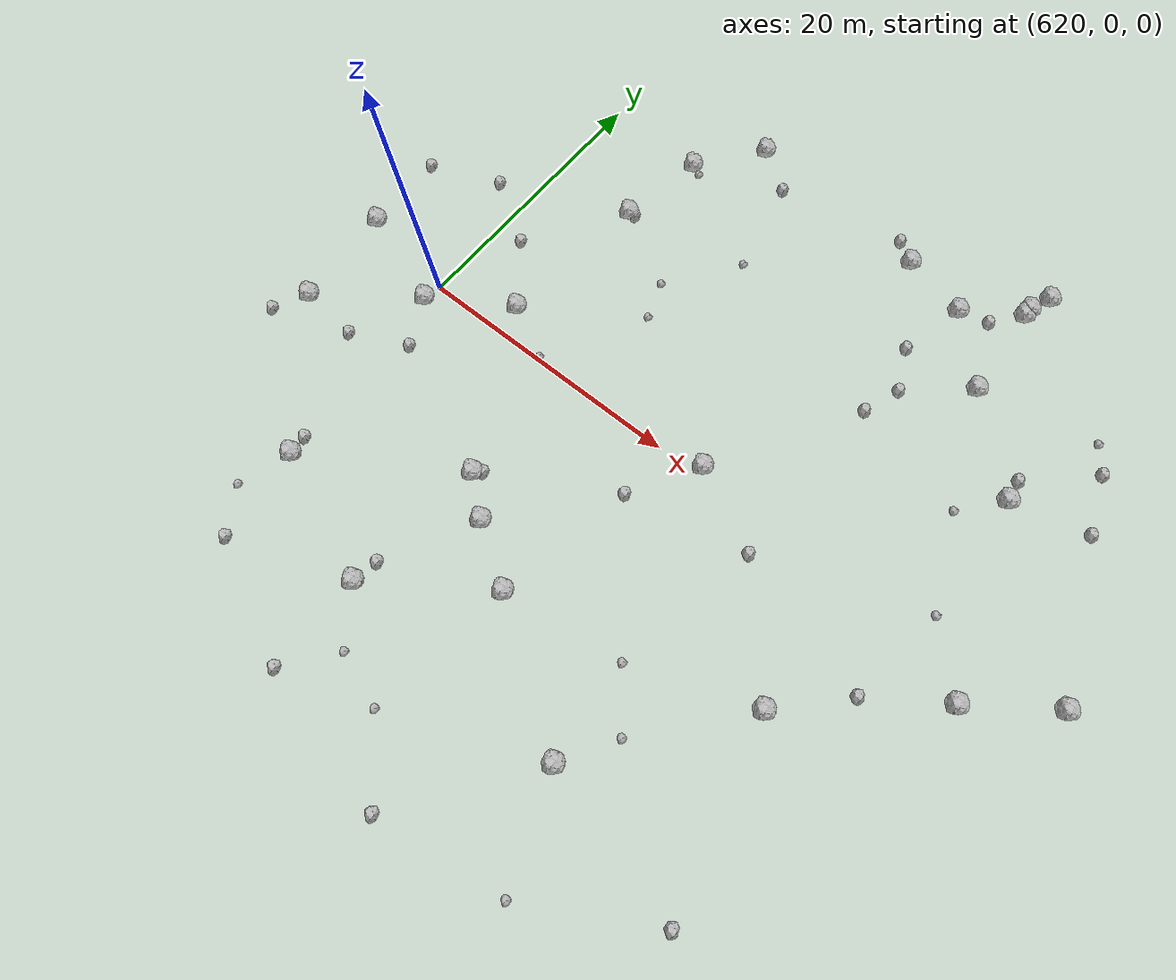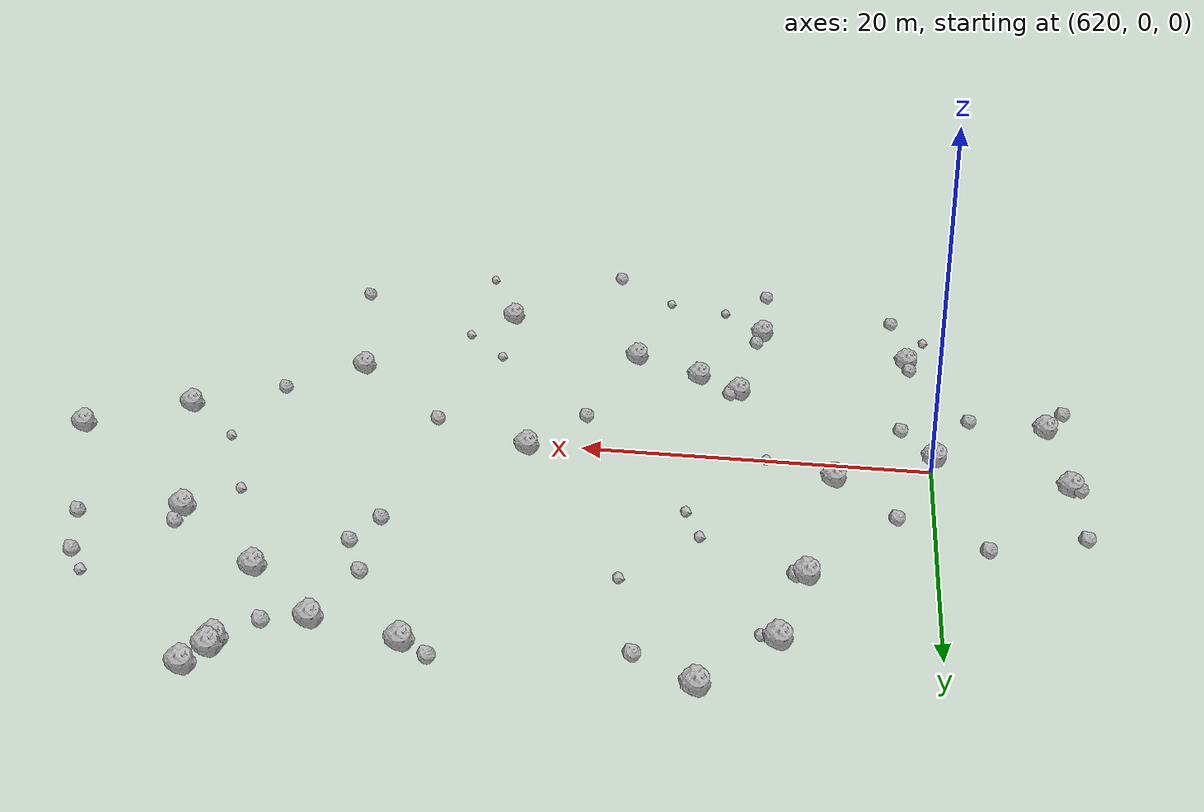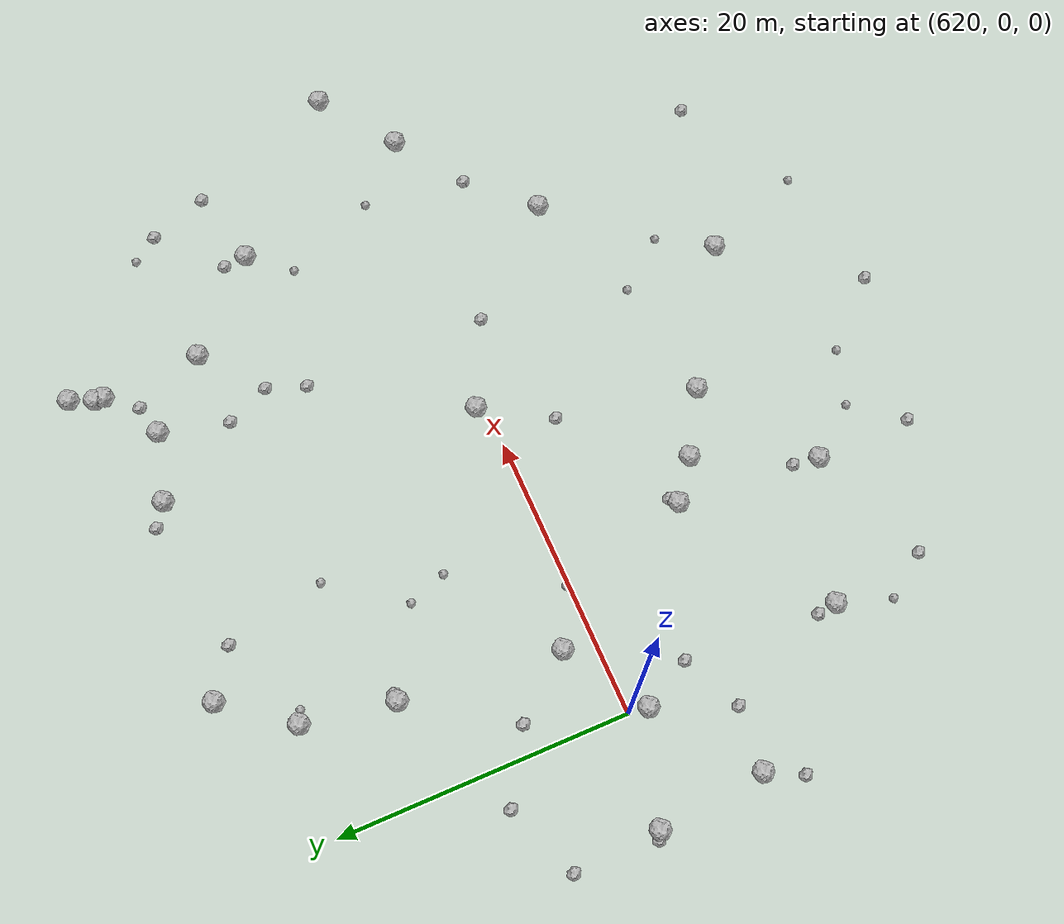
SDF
<sdf version="1.6">
 <world name="default">
  <include><uri>model://sun</uri></include>
  <model name="rock1_16_3">
   <include><uri>model://rock1</uri><pose>650.0054901970822 21.173473814084097 0.5 0 0 0</pose></include>
  </model>
  <model name="rock1_16_4">
   <include><uri>model://rock1</uri><pose>655.5994856930222 -9.443229917844715 0.5 0 0 0</pose></include>
  </model>
  <model name="rock1_16_5">
   <include><uri>model://rock1</uri><pose>613.2652553059283 -6.170101474073043 0.5 0 0 0</pose></include>
  </model>
  <model name="rock1_16_6">
   <include><uri>model://rock1</uri><pose>631.5497511034947 -9.001423838528403 0.5 0 0 0</pose></include>
  </model>
  <model name="rock1_16_7">
   <include><uri>model://rock1</uri><pose>612.5711248038716 1.3261971074953003 0.5 0 0 0</pose></include>
  </model>
  <model name="rock1_16_8">
   <include><uri>model://rock1</uri><pose>647.7519928480081 -19.5813813906354 0.5 0 0 0</pose></include>
  </model>
  <model name="rock1_16_9">
   <include><uri>model://rock1</uri><pose>634.203739810542 -11.090257543435456 0.5 0 0 0</pose></include>
  </model>
  <model name="rock1_16_10">
   <include><uri>model://rock1</uri><pose>654.6008522426661 25.980544412242978 0.5 0 0 0</pose></include>
  </model>
  <model name="rock1_16_11">
   <include><uri>model://rock1</uri><pose>621.2249890915539 -15.443096397111152 0.5 0 0 0</pose></include>
  </model>
  <model name="rock1_16_12">
   <include><uri>model://rock1</uri><pose>660.1149221154934 11.088322557468338 0.5 0 0 0</pose></include>
  </model>
  <model name="rock1_16_13">
   <include><uri>model://rock1</uri><pose>653.8630627314266 23.730613569392908 0.5 0 0 0</pose></include>
  </model>
  <model name="rock1_16_14">
   <include><uri>model://rock1</uri><pose>645.1937341086824 22.489299608249993 0.5 0 0 0</pose></include>
  </model>
  <model name="rock1_16_15">
   <include><uri>model://rock1</uri><pose>625.4569379733513 2.1833079822635284 0.5 0 0 0</pose></include>
  </model>
  <model name="rock1_16_16">
   <include><uri>model://rock1</uri><pose>627.6714330941935 19.589437897295582 0.5 0 0 0</pose></include>
  </model>
  <model name="rock1_16_17">
   <include><uri>model://rock1</uri><pose>638.4671225074951 -13.702426610053767 0.5 0 0 0</pose></include>
  </model>
  <model name="rock1_16_18">
   <include><uri>model://rock1</uri><pose>630.6689564424856 -19.050096290303387 0.5 0 0 0</pose></include>
  </model>
  <model name="rock1_16_19">
   <include><uri>model://rock1</uri><pose>664.438490730054 -2.03868531078702 0.5 0 0 0</pose></include>
  </model>
  <model name="rock1_16_20">
   <include><uri>model://rock1</uri><pose>619.8579349071277 -1.3079237136542972 0.5 0 0 0</pose></include>
  </model>
  <model name="rock1_16_21">
   <include><uri>model://rock1</uri><pose>669.7902301643287 1.75407077244639 0.5 0 0 0</pose></include>
  </model>
  <model name="rock1_16_22">
   <include><uri>model://rock1</uri><pose>654.2803519921998 16.76252986386514 0.5 0 0 0</pose></include>
  </model>
  <model name="rock1_16_23">
   <include><uri>model://rock1</uri><pose>643.1459174471497 0.6996431200813333 0.5 0 0 0</pose></include>
  </model>
  <model name="rock1_16_24">
   <include><uri>model://rock1</uri><pose>631.1614831052776 24.06510701251488 0.5 0 0 0</pose></include>
  </model>
  <model name="rock1_16_25">
   <include><uri>model://rock1</uri><pose>653.915148237989 24.358522138996747 0.5 0 0 0</pose></include>
  </model>
  <model name="rock1_16_26">
   <include><uri>model://rock1</uri><pose>626.5876926790528 13.27565018741894 0.5 0 0 0</pose></include>
  </model>
  <model name="rock2_16_0">
   <include><uri>model://rock2</uri><pose>659.9378789867899 12.708763476560584 0.3 0 0 0</pose></include>
  </model>
  <model name="rock2_16_1">
   <include><uri>model://rock2</uri><pose>664.0623363186803 16.491772604040243 0.3 0 0 0</pose></include>
  </model>
  <model name="rock2_16_2">
   <include><uri>model://rock2</uri><pose>634.2876373676654 21.89442636483019 0.3 0 0 0</pose></include>
  </model>
  <model name="rock2_16_3">
   <include><uri>model://rock2</uri><pose>640.3146857266122 -3.9890381859079014 0.3 0 0 0</pose></include>
  </model>
  <model name="rock2_16_4">
   <include><uri>model://rock2</uri><pose>632.0486833476392 -8.583894673816985 0.3 0 0 0</pose></include>
  </model>
  <model name="rock2_16_5">
   <include><uri>model://rock2</uri><pose>652.1998945928907 21.718177166444015 0.3 0 0 0</pose></include>
  </model>
  <model name="rock2_16_6">
   <include><uri>model://rock2</uri><pose>627.1014239139207 13.323823724610847 0.3 0 0 0</pose></include>
  </model>
  <model name="rock2_16_7">
   <include><uri>model://rock2</uri><pose>622.136060869809 -22.08320829457204 0.3 0 0 0</pose></include>
  </model>
  <model name="rock2_16_8">
   <include><uri>model://rock2</uri><pose>630.9304509665691 -17.269071035959797 0.3 0 0 0</pose></include>
  </model>
  <model name="rock2_16_9">
   <include><uri>model://rock2</uri><pose>643.6254402067126 23.54969748629229 0.3 0 0 0</pose></include>
  </model>
  <model name="rock2_16_10">
   <include><uri>model://rock2</uri><pose>665.5256236599653 12.377441291330399 0.3 0 0 0</pose></include>
  </model>
  <model name="rock2_16_11">
   <include><uri>model://rock2</uri><pose>612.2718900107344 7.3418833949655635 0.3 0 0 0</pose></include>
  </model>
  <model name="rock2_16_12">
   <include><uri>model://rock2</uri><pose>612.0331480380414 1.607934814566633 0.3 0 0 0</pose></include>
  </model>
  <model name="rock2_16_13">
   <include><uri>model://rock2</uri><pose>641.3774010423083 -28.191283667689444 0.3 0 0 0</pose></include>
  </model>
  <model name="rock2_16_14">
   <include><uri>model://rock2</uri><pose>622.0148423304871 6.469693102844218 0.3 0 0 0</pose></include>
  </model>
  <model name="rock2_16_15">
   <include><uri>model://rock2</uri><pose>648.7886621692488 16.409673839282362 0.3 0 0 0</pose></include>
  </model>
  <model name="rock2_16_16">
   <include><uri>model://rock2</uri><pose>658.6580092374649 -22.220462021103646 0.3 0 0 0</pose></include>
  </model>
  <model name="rock2_16_17">
   <include><uri>model://rock2</uri><pose>621.032423553874 -14.093608006919364 0.3 0 0 0</pose></include>
  </model>
  <model name="rock2_16_18">
   <include><uri>model://rock2</uri><pose>630.7524852545861 -25.878404219081155 0.3 0 0 0</pose></include>
  </model>
  <model name="rock2_16_19">
   <include><uri>model://rock2</uri><pose>650.1749119440043 13.360683485547767 0.3 0 0 0</pose></include>
  </model>
  <model name="rock2_16_20">
   <include><uri>model://rock2</uri><pose>617.3954561005586 9.342949475568126 0.3 0 0 0</pose></include>
  </model>
  <model name="rock2_16_21">
   <include><uri>model://rock2</uri><pose>621.6787513002749 -4.76630870319849 0.3 0 0 0</pose></include>
  </model>
  <model name="rock2_16_22">
   <include><uri>model://rock2</uri><pose>617.6563120587138 -6.655383929651471 0.3 0 0 0</pose></include>
  </model>
  <model name="rock2_16_23">
   <include><uri>model://rock2</uri><pose>612.0275966488261 -8.58813032086486 0.3 0 0 0</pose></include>
  </model>
  <model name="rock2_16_24">
   <include><uri>model://rock2</uri><pose>649.1972201427042 10.665211853637913 0.3 0 0 0</pose></include>
  </model>
  <model name="rock2_16_25">
   <include><uri>model://rock2</uri><pose>659.534664190313 -5.347561317015192 0.3 0 0 0</pose></include>
  </model>
  <model name="rock2_16_26">
   <include><uri>model://rock2</uri><pose>649.0777796600604 -2.2355551737304893 0.3 0 0 0</pose></include>
  </model>
  <model name="rock3_16_0">
   <include><uri>model://rock3</uri><pose>637.2387877388913 -23.899227753159913 0.2 0 0 0</pose></include>
  </model>
  <model name="rock3_16_1">
   <include><uri>model://rock3</uri><pose>628.4651271129036 19.17927052981515 0.2 0 0 0</pose></include>
  </model>
  <model name="rock3_16_2">
   <include><uri>model://rock3</uri><pose>660.5587501184701 1.7644140942304034 0.2 0 0 0</pose></include>
  </model>
  <model name="rock3_16_3">
   <include><uri>model://rock3</uri><pose>632.1973520118772 9.956632039599768 0.2 0 0 0</pose></include>
  </model>
  <model name="rock3_16_4">
   <include><uri>model://rock3</uri><pose>650.4445643847845 -26.833310328893866 0.2 0 0 0</pose></include>
  </model>
  <model name="rock3_16_5">
   <include><uri>model://rock3</uri><pose>633.180977643592 7.256801144611863 0.2 0 0 0</pose></include>
  </model>
  <model name="rock3_16_6">
   <include><uri>model://rock3</uri><pose>635.8167948312081 14.895126491784168 0.2 0 0 0</pose></include>
  </model>
  <model name="rock3_16_7">
   <include><uri>model://rock3</uri><pose>620.011481433977 -19.163689089750715 0.2 0 0 0</pose></include>
  </model>
  <model name="rock3_16_8">
   <include><uri>model://rock3</uri><pose>657.7263813620506 8.295739768320196 0.2 0 0 0</pose></include>
  </model>
  <model name="rock3_16_9">
   <include><uri>model://rock3</uri><pose>629.2598212217755 0.17073863757618568 0.2 0 0 0</pose></include>
  </model>
  <model name="rock3_16_10">
   <include><uri>model://rock3</uri><pose>647.1255029367122 -12.575188924747394 0.2 0 0 0</pose></include>
  </model>
  <model name="rock3_16_11">
   <include><uri>model://rock3</uri><pose>662.7699748457079 18.267819938304008 0.2 0 0 0</pose></include>
  </model>
  <model name="rock3_16_12">
   <include><uri>model://rock3</uri><pose>633.3546245283975 -22.612758150548355 0.2 0 0 0</pose></include>
  </model>
  <model name="rock3_16_13">
   <include><uri>model://rock3</uri><pose>649.9484148679594 -16.041973231851863 0.2 0 0 0</pose></include>
  </model>
 </world>
</sdf>
